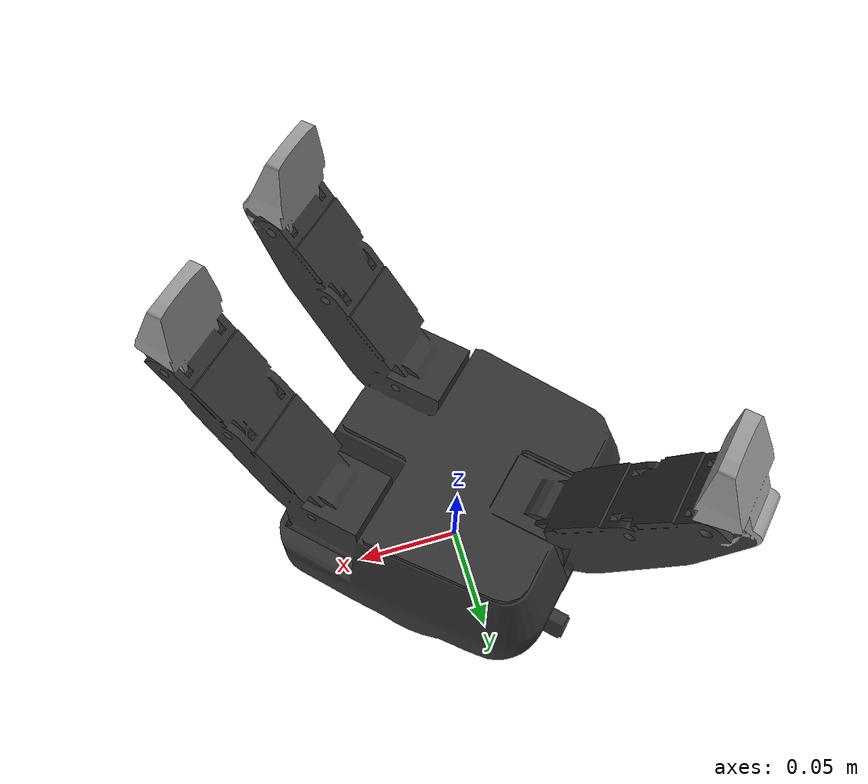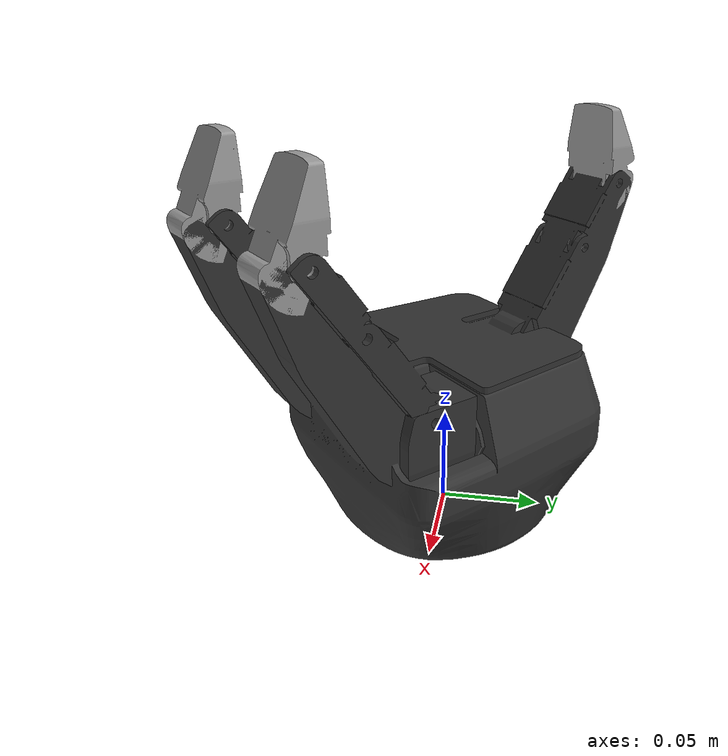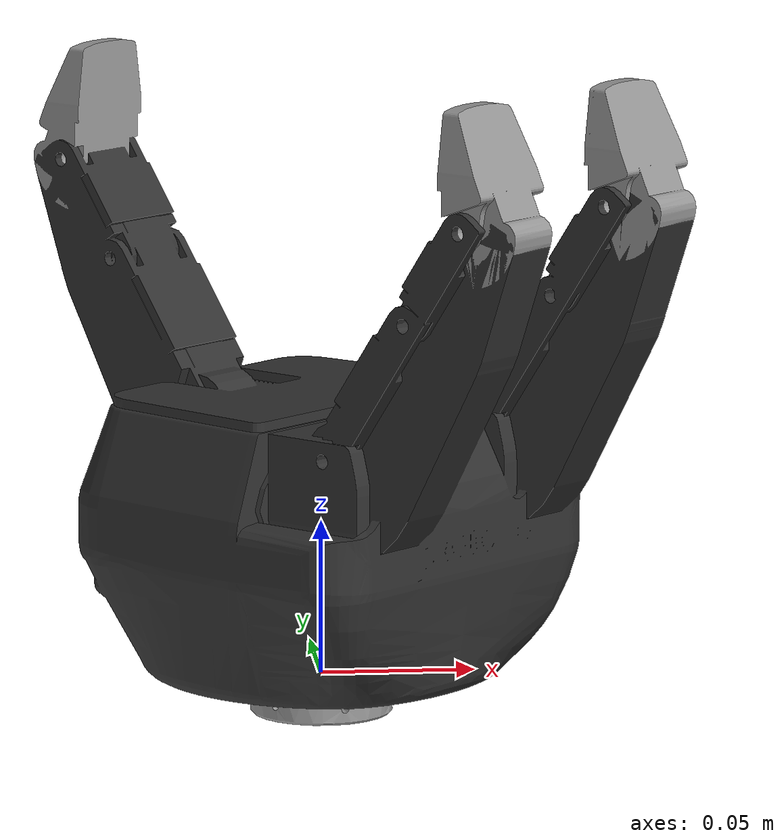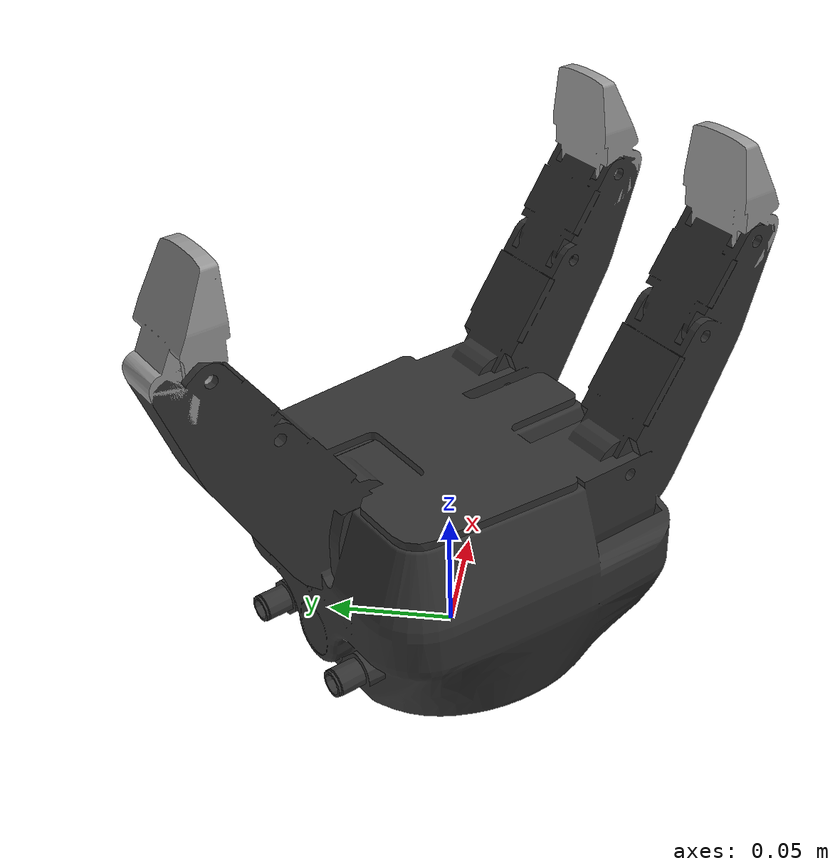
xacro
<?xml version="1.0"?>
<robot xmlns:xacro="http://www.ros.org/wiki/xacro" name="s_model_open">
  <xacro:include filename="$(find robotiq_3f_gripper_visualization)/urdf/robotiq_3f_fixed.urdf.xacro" />
  <xacro:robotiq_3f_fixed prefix="" parent="base_link">
    <origin xyz="0 0 0" rpy="0 0 0" />
  </xacro:robotiq_3f_fixed>
  <link name="base_link" />
</robot>

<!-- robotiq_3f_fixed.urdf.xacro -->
<robot xmlns:xacro="http://wiki.ros.org/xacro">
  <xacro:macro name="robotiq_3f_fixed" params="parent prefix *origin">
    <link name="${prefix}_3f_gripper_base_link">
      <visual>
        <geometry>
          <mesh filename="package://robotiq_3f_gripper_visualization/meshes/3f_gripper_fixed.dae" />
        </geometry>
        <origin xyz="0 0 0" rpy="0 0 -${pi/4}" />
      </visual>
      <collision>
        <!--
          For simplicity, use a simple, over-sized box for the collision detection
          This keeps Moveit from smashing the arm into anything important
        -->
        <geometry>
          <box size="0.21 0.12 0.24" />
        </geometry>
        <origin xyz="0 0 0.12" rpy="0 0 -${pi/4}" />
      </collision>
    </link>

    <joint name="${prefix}_3f_gripper_base_joint" type="fixed">
      <parent link="${parent}" />
      <child link="${prefix}_3f_gripper_base_link" />
      <xacro:insert_block name="origin" />
    </joint>
  </xacro:macro>
</robot>
